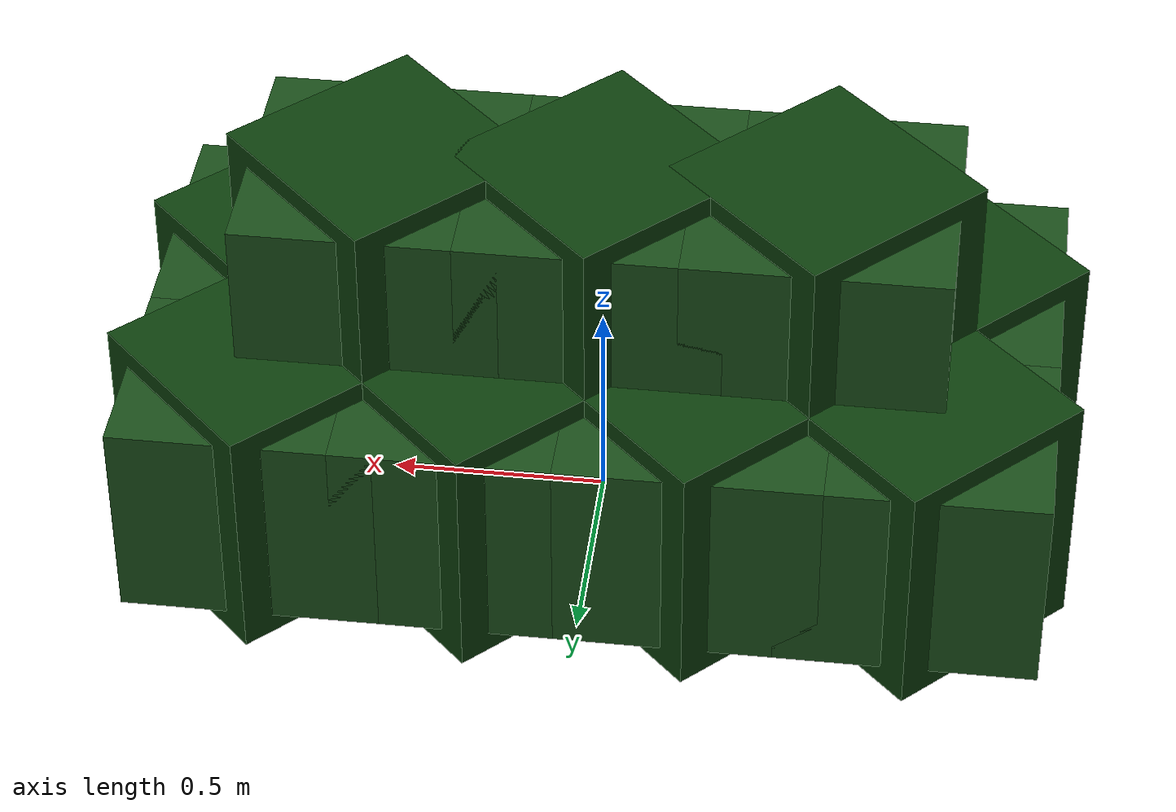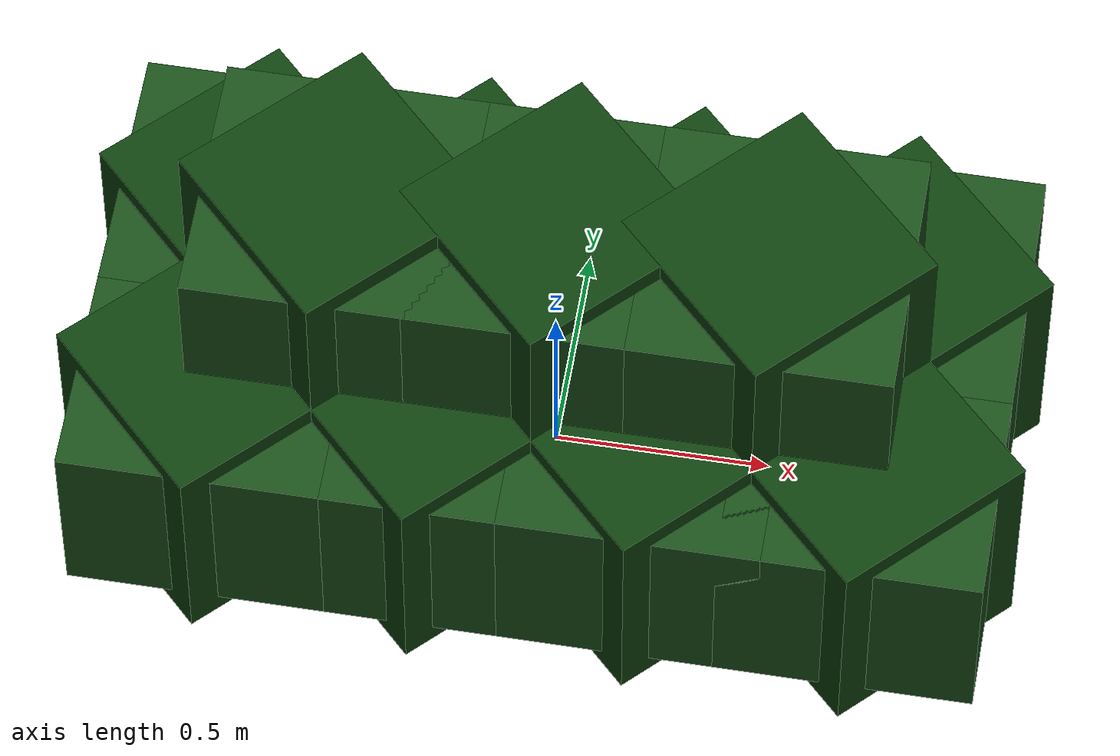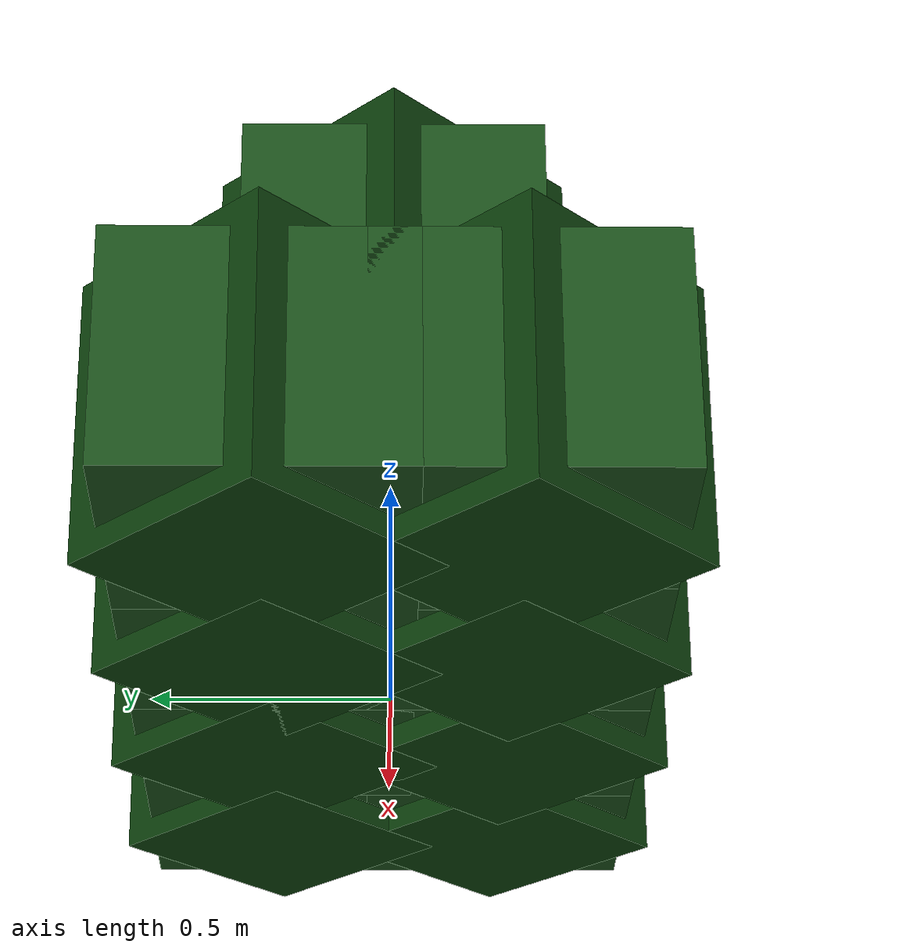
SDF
<?xml version="1.0" ?>
<sdf version="1.6">
  <model name="clumsy_shrub">
    <static>true</static>
    <link name="link">
      <pose>0 0 0.25 0 0 0</pose>

      <visual name="b1_1"><pose>-0.75 -0.25 0 0 0 0</pose><geometry><box><size>0.6 0.6 0.5</size></box></geometry><material><ambient>0.05 0.25 0.05 1</ambient><diffuse>0.1 0.3 0.1 1</diffuse></material><transparency>0.05</transparency></visual>
      <visual name="b1_2"><pose>-0.75 -0.25 0 0 0 0.785</pose><geometry><box><size>0.5 0.5 0.6</size></box></geometry><material><ambient>0.02 0.2 0.02 1</ambient><diffuse>0.05 0.25 0.05 1</diffuse></material><transparency>0.05</transparency></visual>
      <visual name="b2_1"><pose>-0.25 -0.25 0 0 0 0</pose><geometry><box><size>0.6 0.6 0.5</size></box></geometry><material><ambient>0.05 0.25 0.05 1</ambient><diffuse>0.1 0.3 0.1 1</diffuse></material><transparency>0.05</transparency></visual>
      <visual name="b2_2"><pose>-0.25 -0.25 0 0 0 0.785</pose><geometry><box><size>0.5 0.5 0.6</size></box></geometry><material><ambient>0.02 0.2 0.02 1</ambient><diffuse>0.05 0.25 0.05 1</diffuse></material><transparency>0.05</transparency></visual>
      <visual name="b3_1"><pose>0.25 -0.25 0 0 0 0</pose><geometry><box><size>0.6 0.6 0.5</size></box></geometry><material><ambient>0.05 0.25 0.05 1</ambient><diffuse>0.1 0.3 0.1 1</diffuse></material><transparency>0.05</transparency></visual>
      <visual name="b3_2"><pose>0.25 -0.25 0 0 0 0.785</pose><geometry><box><size>0.5 0.5 0.6</size></box></geometry><material><ambient>0.02 0.2 0.02 1</ambient><diffuse>0.05 0.25 0.05 1</diffuse></material><transparency>0.05</transparency></visual>
      <visual name="b4_1"><pose>0.75 -0.25 0 0 0 0</pose><geometry><box><size>0.6 0.6 0.5</size></box></geometry><material><ambient>0.05 0.25 0.05 1</ambient><diffuse>0.1 0.3 0.1 1</diffuse></material><transparency>0.05</transparency></visual>
      <visual name="b4_2"><pose>0.75 -0.25 0 0 0 0.785</pose><geometry><box><size>0.5 0.5 0.6</size></box></geometry><material><ambient>0.02 0.2 0.02 1</ambient><diffuse>0.05 0.25 0.05 1</diffuse></material><transparency>0.05</transparency></visual>

      <visual name="b5_1"><pose>-0.75 0.25 0 0 0 0</pose><geometry><box><size>0.6 0.6 0.5</size></box></geometry><material><ambient>0.05 0.25 0.05 1</ambient><diffuse>0.1 0.3 0.1 1</diffuse></material><transparency>0.05</transparency></visual>
      <visual name="b5_2"><pose>-0.75 0.25 0 0 0 0.785</pose><geometry><box><size>0.5 0.5 0.6</size></box></geometry><material><ambient>0.02 0.2 0.02 1</ambient><diffuse>0.05 0.25 0.05 1</diffuse></material><transparency>0.05</transparency></visual>
      <visual name="b6_1"><pose>-0.25 0.25 0 0 0 0</pose><geometry><box><size>0.6 0.6 0.5</size></box></geometry><material><ambient>0.05 0.25 0.05 1</ambient><diffuse>0.1 0.3 0.1 1</diffuse></material><transparency>0.05</transparency></visual>
      <visual name="b6_2"><pose>-0.25 0.25 0 0 0 0.785</pose><geometry><box><size>0.5 0.5 0.6</size></box></geometry><material><ambient>0.02 0.2 0.02 1</ambient><diffuse>0.05 0.25 0.05 1</diffuse></material><transparency>0.05</transparency></visual>
      <visual name="b7_1"><pose>0.25 0.25 0 0 0 0</pose><geometry><box><size>0.6 0.6 0.5</size></box></geometry><material><ambient>0.05 0.25 0.05 1</ambient><diffuse>0.1 0.3 0.1 1</diffuse></material><transparency>0.05</transparency></visual>
      <visual name="b7_2"><pose>0.25 0.25 0 0 0 0.785</pose><geometry><box><size>0.5 0.5 0.6</size></box></geometry><material><ambient>0.02 0.2 0.02 1</ambient><diffuse>0.05 0.25 0.05 1</diffuse></material><transparency>0.05</transparency></visual>
      <visual name="b8_1"><pose>0.75 0.25 0 0 0 0</pose><geometry><box><size>0.6 0.6 0.5</size></box></geometry><material><ambient>0.05 0.25 0.05 1</ambient><diffuse>0.1 0.3 0.1 1</diffuse></material><transparency>0.05</transparency></visual>
      <visual name="b8_2"><pose>0.75 0.25 0 0 0 0.785</pose><geometry><box><size>0.5 0.5 0.6</size></box></geometry><material><ambient>0.02 0.2 0.02 1</ambient><diffuse>0.05 0.25 0.05 1</diffuse></material><transparency>0.05</transparency></visual>

      <visual name="top1_1"><pose>-0.5 0 0.4 0 0 0</pose><geometry><box><size>0.6 0.6 0.5</size></box></geometry><material><ambient>0.05 0.25 0.05 1</ambient><diffuse>0.1 0.3 0.1 1</diffuse></material><transparency>0.05</transparency></visual>
      <visual name="top1_2"><pose>-0.5 0 0.4 0 0 0.785</pose><geometry><box><size>0.5 0.5 0.6</size></box></geometry><material><ambient>0.02 0.2 0.02 1</ambient><diffuse>0.05 0.25 0.05 1</diffuse></material><transparency>0.05</transparency></visual>
      <visual name="top2_1"><pose>0 0 0.4 0 0 0</pose><geometry><box><size>0.6 0.6 0.5</size></box></geometry><material><ambient>0.05 0.25 0.05 1</ambient><diffuse>0.1 0.3 0.1 1</diffuse></material><transparency>0.05</transparency></visual>
      <visual name="top2_2"><pose>0 0 0.4 0 0 0.785</pose><geometry><box><size>0.5 0.5 0.6</size></box></geometry><material><ambient>0.02 0.2 0.02 1</ambient><diffuse>0.05 0.25 0.05 1</diffuse></material><transparency>0.05</transparency></visual>
      <visual name="top3_1"><pose>0.5 0 0.4 0 0 0</pose><geometry><box><size>0.6 0.6 0.5</size></box></geometry><material><ambient>0.05 0.25 0.05 1</ambient><diffuse>0.1 0.3 0.1 1</diffuse></material><transparency>0.05</transparency></visual>
      <visual name="top3_2"><pose>0.5 0 0.4 0 0 0.785</pose><geometry><box><size>0.5 0.5 0.6</size></box></geometry><material><ambient>0.02 0.2 0.02 1</ambient><diffuse>0.05 0.25 0.05 1</diffuse></material><transparency>0.05</transparency></visual>

      <collision name="collision">
        <pose>0 0 0.2 0 0 0</pose>
        <geometry>
          <box><size>2.1 1.1 0.9</size></box>
        </geometry>
      </collision>
    </link>
  </model>
</sdf>
